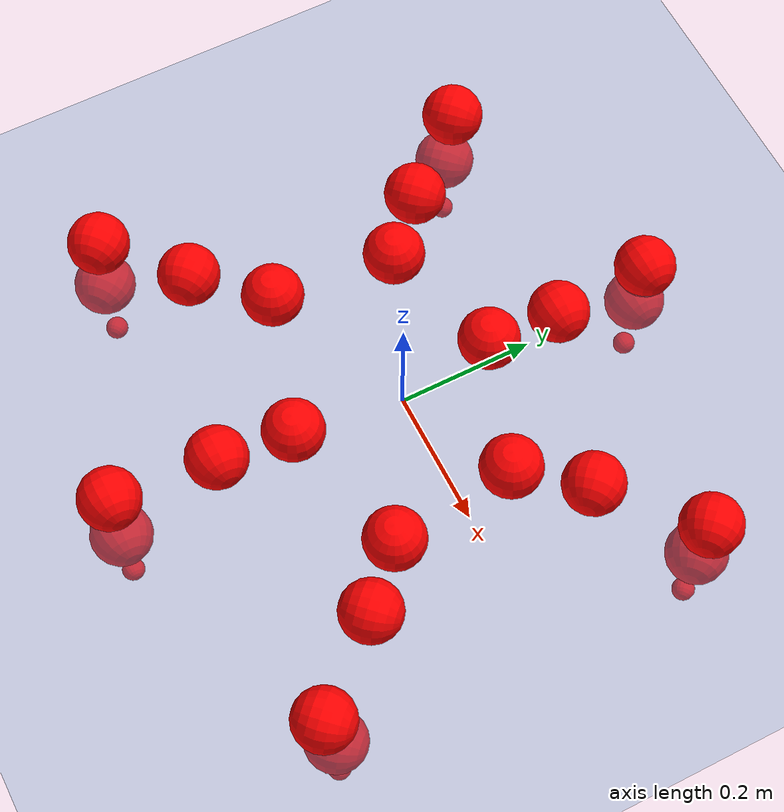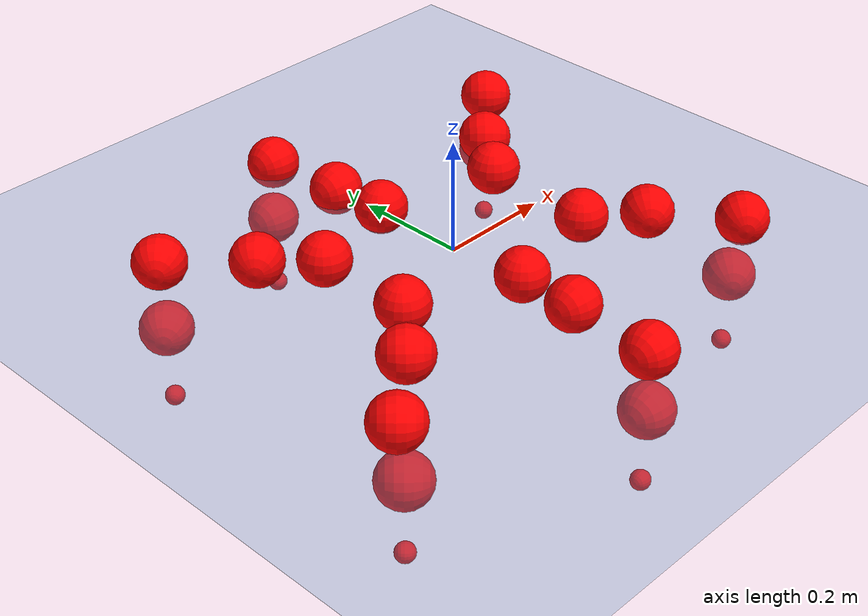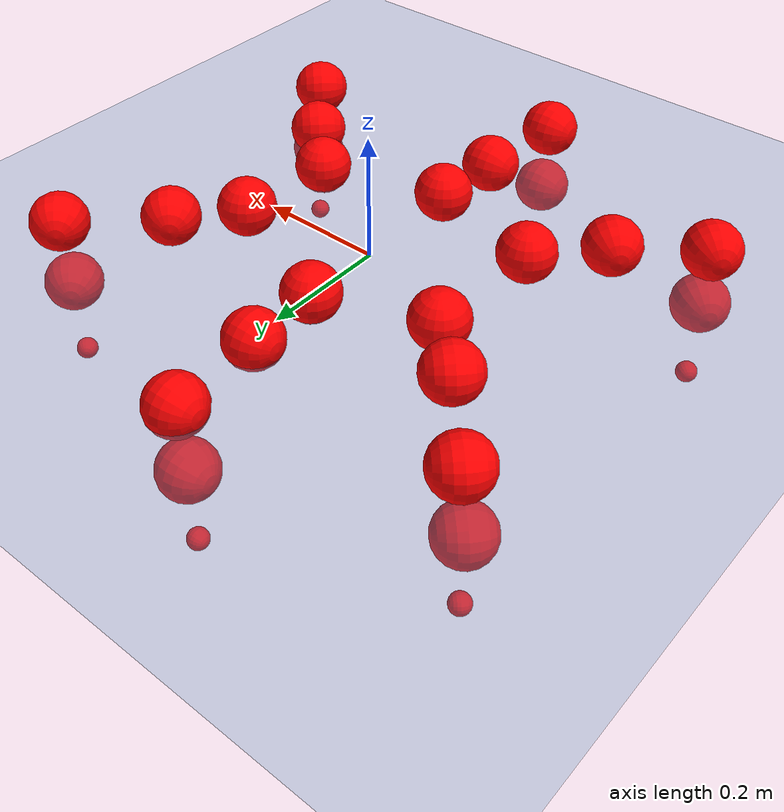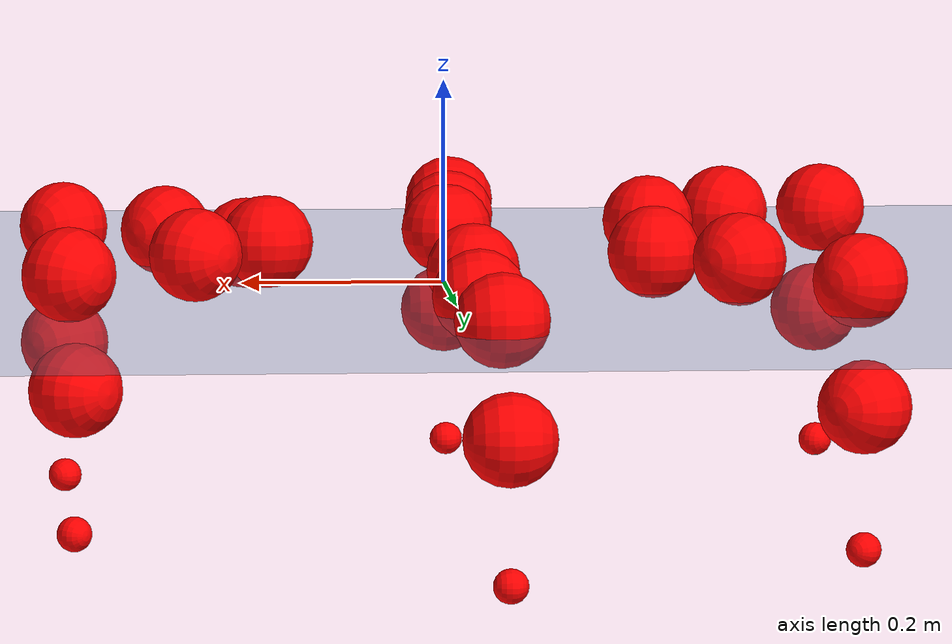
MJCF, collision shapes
<mujoco model="Golem">
  <compiler angle="radian" assetdir="assets" balanceinertia="true" inertiafromgeom="false"/>

  <option timestep="0.005" density="1.2" viscosity="2e-05"/>

  <size nkey="1"/>

  <visual>
    <quality shadowsize="8192"/>
    <map shadowclip="0.5"/>
  </visual>

  <default>
    <default class="/">
      <joint armature="0.01" damping="0.01" frictionloss="0.01"/>
      <geom contype="0" conaffinity="0" group="1" solref="-1000 -80"/>
      <site size="0.01 0.005 0.005" group="5"/>
      <general forcelimited="true" biastype="affine" gainprm="25" biasprm="0 -25 -0.5"/>
      <default class="visual">
        <geom type="mesh" group="2"/>
      </default>
      <default class="collision">
        <geom group="3"/>
      </default>
      <default class="foot">
        <geom size="0.01 0 0" condim="6" group="4" priority="1" solimp="0.015 1 0.01"/>
      </default>
      <default class="reward_collision_sphere">
        <geom group="5" rgba="1 0 0 1"/>
      </default>
    </default>
  </default>

  <asset>
    <texture type="skybox" colorspace="auto" name="//unnamed_texture_0" builtin="gradient" rgb1="0.95 0.95 0.95" rgb2="0.95 0.95 0.95" width="100" height="600"/>
    <texture type="2d" colorspace="auto" name="texplane" builtin="checker" rgb1="0.345 0.575 0.748" rgb2="0.345 0.575 0.748" markrgb="1 1 1" width="512" height="512"/>
    <material name="MatPlane" class="/" texture="texplane" texuniform="true" texrepeat="2 2" specular="0.9"/>
    <mesh name="body" class="/" file="body.stl" scale="0.001 0.001 0.001"/>
    <mesh name="coxa" class="/" file="coxa.stl" scale="0.001 0.001 0.001"/>
    <mesh name="femur" class="/" file="femur.stl" scale="0.001 0.001 0.001"/>
    <mesh name="tibia" class="/" file="tibia.stl" scale="0.001 0.001 0.001"/>
    <mesh name="tarsus" class="/" file="tarsus.stl" scale="0.001 0.001 0.001"/>
  </asset>

  <worldbody>
    <geom name="floor" class="/" size="100 100 0.125" type="plane" group="0" material="MatPlane"/>
    <light name="toplight_shadow" class="/" pos="0 0 5" dir="0.0990148 0.0990148 -0.990148" type="directional" ambient="0.04 0.04 0.04" diffuse="0.55 0.55 0.55" specular="0.12 0.12 0.12"/>
    <light name="toplight_fill" class="/" pos="0 0 5" dir="0.0990148 0.0990148 -0.990148" type="directional" castshadow="false" ambient="0.04 0.04 0.04" diffuse="0.3 0.3 0.3" specular="0.08 0.08 0.08"/>
    <body name="trunk" pos="-0.0112542 -0.00615939 -0.00549421" quat="1 -7.97174e-06 3.67301e-06 -2.81283e-05">
      <inertial pos="-0.00201564 -0.000824406 -0.0037045" quat="0.999972 0.000293242 -0.00681274 0.00296524" mass="5.62956" diaginertia="0.0420989 0.0657586 0.0014497"/>
      <joint name="//unnamed_joint_0" type="free"/>
      <geom name="//unnamed_geom_1" class="/" pos="0 0 0.0435126" quat="1 0 0 0" type="mesh" rgba="0.9 0.9 0.9 1" mesh="body"/>
      <site name="imu" class="/" pos="0.114918 -0.0495341 0.055973" size="0.0113439"/>
      <camera name="track" class="/" pos="0 -2.88138 0" quat="0.707107 0.707107 0 0" mode="trackcom"/>
      <camera name="ego_camera" class="/" pos="0.166739 0 0.0679884" quat="-0.5 -0.5 0.5 0.5"/>
      <body name="coxa_RR" pos="-0.227641 -0.120148 0.0547995" quat="0.382642 3.82604e-05 2.987e-06 -0.923897">
        <inertial pos="-0.00164534 0.0119601 0.00440033" quat="0.999282 -0.0340084 -0.00877307 -0.0142307" mass="0.331486" diaginertia="0.0374615 0.0671678 0.00158291"/>
        <joint name="coxa_joint_RR" class="/" pos="0 0 0" axis="0.0177209 -0.0129292 -0.999759" stiffness="0.0512152" range="-3.1564 3.15543" armature="0.0161569" damping="0.0218091" frictionloss="0.0114175"/>
        <geom name="//unnamed_geom_2" class="/" type="mesh" rgba="0.2 0.2 0.2 1" mesh="coxa"/>
        <geom name="//unnamed_geom_3" class="reward_collision_sphere" size="0.0453758" pos="-0.0384782 0 0"/>
        <body name="femur_RR" pos="0.0868409 0.00520863 0.000107921" quat="0.500422 -0.499673 0.500264 0.499641">
          <inertial pos="0.00481175 0.00357603 -0.00148917" quat="0.999918 0.000427957 -0.00954157 -0.00852428" mass="0.298636" diaginertia="0.0352047 0.0614352 0.00124388"/>
          <joint name="femur_joint_RR" class="/" pos="0 0 0" axis="0.000204216 0.0106222 -0.999944" stiffness="0.0525177" range="-2.94384 3.28714" armature="0.0124474" damping="0.00519596" frictionloss="0.00613408"/>
          <geom name="//unnamed_geom_4" class="/" type="mesh" rgba="0.9 0.9 0.9 1" mesh="femur"/>
          <geom name="//unnamed_geom_5" class="reward_collision_sphere" size="0.0453758"/>
          <body name="tibia_RR" pos="0.00781643 -0.144894 -0.012144" quat="-0.000285814 0.999983 -0.00347102 -0.0047378">
            <inertial pos="0.00983552 0.000847931 -0.00192039" quat="0.999971 -0.00259827 0.00279888 0.00666369" mass="0.281415" diaginertia="0.0371841 0.0686697 0.00169495"/>
            <joint name="tibia_joint_RR" class="/" pos="0 0 0" axis="-0.0281424 0.0391066 0.998839" range="-3.22705 3.01021" armature="0.0115937" damping="0.0246247" frictionloss="0.0113839"/>
            <geom name="//unnamed_geom_6" class="/" type="mesh" rgba="0.2 0.2 0.2 1" mesh="tibia"/>
            <geom name="//unnamed_geom_7" class="reward_collision_sphere" size="0.0453758"/>
            <body name="tarsus_RR" pos="0.104255 0.0011653 -0.00931335" quat="1 1.30088e-05 -1.99702e-05 5.02821e-07">
              <inertial pos="0.0673987 0.00102003 -0.00464199" quat="0.502778 0.502259 0.492162 0.502719" mass="0.293631" diaginertia="0.0345165 0.0596947 0.00146888"/>
              <joint name="tarsus_joint_RR" class="/" pos="0 0 0" axis="0.00448301 -0.00149945 0.999989" range="-2.94531 3.00296" armature="0.012531" damping="0.0343839" frictionloss="0.0140822"/>
              <geom name="//unnamed_geom_8" class="/" type="mesh" rgba="0.9 0.9 0.9 1" mesh="tarsus"/>
              <geom name="foot_1" class="foot" size="0.0114765" pos="0.143652 0 0" quat="0 -0.707107 0 0.707107"/>
              <geom name="//unnamed_geom_10" class="reward_collision_sphere" size="0.0453758"/>
              <geom name="//unnamed_geom_11" class="reward_collision_sphere" size="0.0170159" pos="0.13788 0 0"/>
              <site name="foot_1" class="foot" pos="0.143652 0 0" quat="0 -0.707107 0 0.707107" size="0.0113439"/>
            </body>
          </body>
        </body>
      </body>
      <body name="coxa_RM" pos="-0.00164683 -0.194951 0.0407475" quat="0.70787 -0.000892159 0.00301761 -0.706336">
        <inertial pos="-0.00781585 0.000770287 0.00459332" quat="0.999747 0.0196111 -0.00923643 0.00605031" mass="0.304848" diaginertia="0.0367191 0.0704768 0.00131197"/>
        <joint name="coxa_joint_RM" class="/" pos="0 0 0" axis="0.0027223 -0.00600798 -0.999978" range="-3.06985 3.12019" armature="0.0102468" damping="0.0472115" frictionloss="0.0187337"/>
        <geom name="//unnamed_geom_12" class="/" type="mesh" rgba="0.2 0.2 0.2 1" mesh="coxa"/>
        <geom name="//unnamed_geom_13" class="reward_collision_sphere" size="0.0453758" pos="-0.0384782 0 0"/>
        <body name="femur_RM" pos="0.0734694 -0.00924681 0.00291802" quat="0.496077 -0.503689 0.500597 0.499608">
          <inertial pos="-0.00152969 0.00391992 0.000418905" quat="0.999873 0.00387787 0.0124758 0.00911009" mass="0.24399" diaginertia="0.0293704 0.0586392 0.00125898"/>
          <joint name="femur_joint_RM" class="/" pos="0 0 0" axis="-0.0310116 9.131e-05 -0.999519" range="-3.12539 3.12078" armature="0.0140878" damping="0" frictionloss="0.0110593"/>
          <geom name="//unnamed_geom_14" class="/" type="mesh" rgba="0.9 0.9 0.9 1" mesh="femur"/>
          <geom name="//unnamed_geom_15" class="reward_collision_sphere" size="0.0453758"/>
          <body name="tibia_RM" pos="0.000394047 -0.1549 -0.0117608" quat="0.000121458 1 -0.000508317 -0.00029056">
            <inertial pos="-0.00716363 0.0116315 0.00187456" quat="0.998727 -0.0057646 -0.0136522 0.048225" mass="0.341517" diaginertia="0.0354412 0.0548907 0.00152139"/>
            <joint name="tibia_joint_RM" class="/" pos="0 0 0" axis="0.00652788 -0.00255528 0.999975" stiffness="0.00150012" range="-2.93717 2.87997" armature="0.0116859" damping="0.0183096" frictionloss="0.010507"/>
            <geom name="//unnamed_geom_16" class="/" type="mesh" rgba="0.2 0.2 0.2 1" mesh="tibia"/>
            <geom name="//unnamed_geom_17" class="reward_collision_sphere" size="0.0453758"/>
            <body name="tarsus_RM" pos="0.115203 0.00101602 -0.00686099" quat="1 0.000361881 0.000356844 0.000148152">
              <inertial pos="0.0759891 0.00704593 -0.00813206" quat="0.505735 0.538177 0.456887 0.495835" mass="0.24959" diaginertia="0.0389349 0.0667961 0.00160537"/>
              <joint name="tarsus_joint_RM" class="/" pos="0 0 0" axis="0.00192585 0.00171091 0.999997" stiffness="0.0363727" range="-3.27289 3.18154" armature="0.00904846" damping="0" frictionloss="0.0104551"/>
              <geom name="//unnamed_geom_18" class="/" type="mesh" rgba="0.9 0.9 0.9 1" mesh="tarsus"/>
              <geom name="foot_2" class="foot" size="0.0105144" pos="0.143652 0 0" quat="0 -0.707107 0 0.707107"/>
              <geom name="//unnamed_geom_20" class="reward_collision_sphere" size="0.0453758"/>
              <geom name="//unnamed_geom_21" class="reward_collision_sphere" size="0.0170159" pos="0.13788 0 0"/>
              <site name="foot_2" class="foot" pos="0.143652 0 0" quat="0 -0.707107 0 0.707107" size="0.0113439"/>
            </body>
          </body>
        </body>
      </body>
      <body name="coxa_RF" pos="0.230092 -0.131171 0.0337793" quat="0.924022 0.000288216 -0.000839959 -0.382338">
        <inertial pos="0.00266808 -0.00563402 0.00143946" quat="0.999999 0.000792111 -0.000642455 -0.000213622" mass="0.292309" diaginertia="0.0345653 0.059212 0.00151894"/>
        <joint name="coxa_joint_RF" class="/" pos="0 0 0" axis="-0.000412334 0.000980298 -0.999999" stiffness="0.00676365" range="-3.1081 3.1036" armature="0.00604104" damping="0.0127232" frictionloss="0.0119204"/>
        <geom name="//unnamed_geom_22" class="/" type="mesh" rgba="0.2 0.2 0.2 1" mesh="coxa"/>
        <geom name="//unnamed_geom_23" class="reward_collision_sphere" size="0.0453758" pos="-0.0384782 0 0"/>
        <body name="femur_RF" pos="0.0711022 0.00259671 0.00484931" quat="0.501266 -0.500076 0.498997 0.499659">
          <inertial pos="-0.00392258 0.00677088 0.00156031" quat="0.999784 -0.00455073 -0.00858561 -0.0183702" mass="0.310114" diaginertia="0.034592 0.0709879 0.00133479"/>
          <joint name="femur_joint_RF" class="/" pos="0 0 0" axis="-0.00363809 -0.0013435 -0.999992" range="-2.9078 3.08582" armature="0.0172134" damping="0.0015987" frictionloss="0.00655629"/>
          <geom name="//unnamed_geom_24" class="/" type="mesh" rgba="0.9 0.9 0.9 1" mesh="femur"/>
          <geom name="//unnamed_geom_25" class="reward_collision_sphere" size="0.0453758"/>
          <body name="tibia_RF" pos="0.00841268 -0.156699 -0.0122151" quat="-0.000559119 1 -0.000572601 -0.000365472">
            <inertial pos="0.0120358 -0.000870876 0.00107273" quat="0.999998 -0.000772935 0.00112775 -0.00118604" mass="0.249356" diaginertia="0.036813 0.0560947 0.00145001"/>
            <joint name="tibia_joint_RF" class="/" pos="0 0 0" axis="0.0292809 0.0501493 0.998312" range="-3.1024 3.37318" armature="0.0130902" damping="0.00620875" frictionloss="0.0116252"/>
            <geom name="//unnamed_geom_26" class="/" type="mesh" rgba="0.2 0.2 0.2 1" mesh="tibia"/>
            <geom name="//unnamed_geom_27" class="reward_collision_sphere" size="0.0453758"/>
            <body name="tarsus_RF" pos="0.118645 -0.0105979 -0.00945085" quat="0.999985 0.00343884 0.00184393 -0.00385674">
              <inertial pos="0.0762033 -0.000987014 0.00106425" quat="0.499947 0.496803 0.497561 0.505641" mass="0.291539" diaginertia="0.0346211 0.0632922 0.00135259"/>
              <joint name="tarsus_joint_RF" class="/" pos="0 0 0" axis="-0.0294242 0.0130641 0.999482" stiffness="0.019002" range="-3.06547 3.17388" armature="0.0080193" damping="0.00241389" frictionloss="0.0142552"/>
              <geom name="//unnamed_geom_28" class="/" type="mesh" rgba="0.9 0.9 0.9 1" mesh="tarsus"/>
              <geom name="foot_3" class="foot" size="0.00792056" pos="0.143652 0 0" quat="0 -0.707107 0 0.707107"/>
              <geom name="//unnamed_geom_30" class="reward_collision_sphere" size="0.0453758"/>
              <geom name="//unnamed_geom_31" class="reward_collision_sphere" size="0.0170159" pos="0.13788 0 0"/>
              <site name="foot_3" class="foot" pos="0.143652 0 0" quat="0 -0.707107 0 0.707107" size="0.0113439"/>
            </body>
          </body>
        </body>
      </body>
      <body name="coxa_LR" pos="-0.2165 0.122197 0.0439905" quat="0.382649 -6.98904e-05 -0.000157528 0.923894">
        <inertial pos="0.0107351 -0.00512969 0.012615" quat="0.998279 0.0145177 -0.0291691 0.0487542" mass="0.287475" diaginertia="0.0319336 0.0470391 0.00126648"/>
        <joint name="coxa_joint_LR" class="/" pos="0 0 0" axis="-0.0492247 -0.0245253 -0.998487" range="-3.09543 3.24739" armature="0.0147637" damping="0.0133121" frictionloss="0.016313"/>
        <geom name="//unnamed_geom_32" class="/" type="mesh" rgba="0.2 0.2 0.2 1" mesh="coxa"/>
        <geom name="//unnamed_geom_33" class="reward_collision_sphere" size="0.0453758" pos="-0.0384782 0 0"/>
        <body name="femur_LR" pos="0.0678167 0.00220406 0.000525035" quat="0.500219 -0.50007 0.499841 0.49987">
          <inertial pos="0.0035379 0.00069613 -0.000524416" quat="0.999595 0.0164814 0.00328797 -0.0229521" mass="0.291752" diaginertia="0.0360927 0.0562715 0.00146508"/>
          <joint name="femur_joint_LR" class="/" pos="0 0 0" axis="0.0270331 0.0155478 0.999514" range="-3.1881 3.11858" armature="0.0108202" damping="0.00829553" frictionloss="0.0182707"/>
          <geom name="//unnamed_geom_34" class="/" type="mesh" rgba="0.9 0.9 0.9 1" mesh="femur"/>
          <geom name="//unnamed_geom_35" class="reward_collision_sphere" size="0.0453758"/>
          <body name="tibia_LR" pos="0.0079967 -0.155745 -0.00976963" quat="-0.00309096 0.999986 0.00286806 0.00313125">
            <inertial pos="0.000993038 0.00124142 -0.000612613" quat="0.999998 0.00144409 0.000561969 -0.0015608" mass="0.263833" diaginertia="0.0330232 0.0598238 0.00135675"/>
            <joint name="tibia_joint_LR" class="/" pos="0 0 0" axis="-0.00483492 0.0285029 -0.999582" range="-3.03406 3.31289" armature="0.0109175" damping="0.0113803" frictionloss="0.0118597"/>
            <geom name="//unnamed_geom_36" class="/" type="mesh" rgba="0.2 0.2 0.2 1" mesh="tibia"/>
            <geom name="//unnamed_geom_37" class="reward_collision_sphere" size="0.0453758"/>
            <body name="tarsus_LR" pos="0.122662 2.06016e-06 -0.00851602" quat="0.999985 -0.00444879 -0.00262991 0.00190457">
              <inertial pos="0.064836 0.00067579 0.0119415" quat="0.497703 0.506203 0.4982 0.497842" mass="0.30561" diaginertia="0.0340969 0.0657783 0.00138649"/>
              <joint name="tarsus_joint_LR" class="/" pos="0 0 0" axis="-0.0504671 0.00090763 -0.998725" range="-2.95329 3.32529" armature="0.0116507" damping="0.0243988" frictionloss="0.00954509"/>
              <geom name="//unnamed_geom_38" class="/" type="mesh" rgba="0.9 0.9 0.9 1" mesh="tarsus"/>
              <geom name="foot_4" class="foot" size="0.0087731" pos="0.143652 0 0" quat="0.707107 0 -0.707107 0"/>
              <geom name="//unnamed_geom_40" class="reward_collision_sphere" size="0.0453758"/>
              <geom name="//unnamed_geom_41" class="reward_collision_sphere" size="0.0170159" pos="0.13788 0 0"/>
              <site name="foot_4" class="foot" pos="0.143652 0 0" quat="0.707107 0 -0.707107 0" size="0.0113439"/>
            </body>
          </body>
        </body>
      </body>
      <body name="coxa_LM" pos="-0.00854488 0.192462 0.0342197" quat="0.706174 -0.000283477 0.00189444 0.708036">
        <inertial pos="-0.00186606 0.00314548 0.00431642" quat="0.999422 -0.0334337 0.0060726 0.000832842" mass="0.303326" diaginertia="0.0386378 0.064685 0.00150405"/>
        <joint name="coxa_joint_LM" class="/" pos="0 0 0" axis="0.000897081 -0.000218155 -1" stiffness="0.0328257" range="-3.32393 3.16375" armature="0.00876755" damping="0" frictionloss="0.00641816"/>
        <geom name="//unnamed_geom_42" class="/" type="mesh" rgba="0.2 0.2 0.2 1" mesh="coxa"/>
        <geom name="//unnamed_geom_43" class="reward_collision_sphere" size="0.0453758" pos="-0.0384782 0 0"/>
        <body name="femur_LM" pos="0.0747874 -0.00184225 -0.0116825" quat="0.498518 -0.502864 0.498037 0.500567">
          <inertial pos="-0.00481797 0.00931342 -0.0124187" quat="0.998439 0.000910641 0.0462107 0.0313488" mass="0.284136" diaginertia="0.031562 0.0702243 0.00135315"/>
          <joint name="femur_joint_LM" class="/" pos="0 0 0" axis="-0.0332042 -0.00388124 0.999441" range="-3.1281 3.31566" armature="0.00825613" damping="0.0101117" frictionloss="0.0120641"/>
          <geom name="//unnamed_geom_44" class="/" type="mesh" rgba="0.9 0.9 0.9 1" mesh="femur"/>
          <geom name="//unnamed_geom_45" class="reward_collision_sphere" size="0.0453758"/>
          <body name="tibia_LM" pos="0.00527092 -0.150894 0.00969449" quat="0.00279524 0.999981 -6.91671e-05 0.00555893">
            <inertial pos="-0.00148727 0.0130208 -0.00274198" quat="0.999394 0.0247519 0.00347727 -0.0242386" mass="0.303444" diaginertia="0.0333403 0.0540402 0.00139598"/>
            <joint name="tibia_joint_LM" class="/" pos="0 0 0" axis="-0.0123889 0.0142158 -0.999822" stiffness="0.0138041" range="-3.11242 3.08599" armature="0.00600786" damping="0.0638775" frictionloss="0.0144386"/>
            <geom name="//unnamed_geom_46" class="/" type="mesh" rgba="0.2 0.2 0.2 1" mesh="tibia"/>
            <geom name="//unnamed_geom_47" class="reward_collision_sphere" size="0.0453758"/>
            <body name="tarsus_LM" pos="0.112416 0.00142848 -0.00658283" quat="0.999979 -0.00527026 -0.00373939 0.000611108">
              <inertial pos="0.0843792 -0.00142489 0.00544702" quat="0.499908 0.500326 0.499694 0.500071" mass="0.306506" diaginertia="0.041927 0.0727596 0.00150916"/>
              <joint name="tarsus_joint_LM" class="/" pos="0 0 0" axis="-0.00205632 0.000250551 -0.999998" stiffness="0.0196689" range="-3.38607 3.10387" armature="0.00555435" damping="0.0710465" frictionloss="0.00917731"/>
              <geom name="//unnamed_geom_48" class="/" type="mesh" rgba="0.9 0.9 0.9 1" mesh="tarsus"/>
              <geom name="foot_5" class="foot" size="0.00988363" pos="0.143652 0 0" quat="0.707107 0 -0.707107 0"/>
              <geom name="//unnamed_geom_50" class="reward_collision_sphere" size="0.0453758"/>
              <geom name="//unnamed_geom_51" class="reward_collision_sphere" size="0.0170159" pos="0.13788 0 0"/>
              <site name="foot_5" class="foot" pos="0.143652 0 0" quat="0.707107 0 -0.707107 0" size="0.0113439"/>
            </body>
          </body>
        </body>
      </body>
      <body name="coxa_LF" pos="0.215774 0.108412 0.0551027" quat="0.923848 -0.000444946 0.000276701 0.38276">
        <inertial pos="-0.00043808 0.000577076 0.00374046" quat="0.999321 -0.00863792 -0.00473478 0.0355161" mass="0.358957" diaginertia="0.0402861 0.0724332 0.00166477"/>
        <joint name="coxa_joint_LF" class="/" pos="0 0 0" axis="-0.000725652 0.00111294 -0.999999" stiffness="0.0170825" range="-3.05195 2.8942" armature="0.00609712" damping="0.0727276" frictionloss="0.0153873"/>
        <geom name="//unnamed_geom_52" class="/" type="mesh" rgba="0.2 0.2 0.2 1" mesh="coxa"/>
        <geom name="//unnamed_geom_53" class="reward_collision_sphere" size="0.0453758" pos="-0.0384782 0 0"/>
        <body name="femur_LF" pos="0.0747233 0.0111724 -0.00276564" quat="0.499646 -0.499824 0.504013 0.496488">
          <inertial pos="-0.0120284 0.000286981 0.000917787" quat="0.99995 0.00136648 -0.00887801 -0.00432757" mass="0.303045" diaginertia="0.0358874 0.0625406 0.00161967"/>
          <joint name="femur_joint_LF" class="/" pos="0 0 0" axis="0.00189125 -0.00312275 0.999993" range="-3.27086 3.12096" armature="0.00607655" damping="0" frictionloss="0.0123561"/>
          <geom name="//unnamed_geom_54" class="/" type="mesh" rgba="0.9 0.9 0.9 1" mesh="femur"/>
          <geom name="//unnamed_geom_55" class="reward_collision_sphere" size="0.0453758"/>
          <body name="tibia_LF" pos="0.00502379 -0.166008 -0.00640277" quat="-0.00019857 1 0.000229678 -0.000106392">
            <inertial pos="0.00138988 -0.00799847 -0.0042795" quat="0.999938 0.003481 -0.00476086 -0.00947421" mass="0.307945" diaginertia="0.0356029 0.0624983 0.00146225"/>
            <joint name="tibia_joint_LF" class="/" pos="0 0 0" axis="-0.00404027 -0.0017905 -0.99999" stiffness="0.0314249" range="-3.13384 3.15471" armature="0.0153532" damping="0.0430945" frictionloss="0.00843177"/>
            <geom name="//unnamed_geom_56" class="/" type="mesh" rgba="0.2 0.2 0.2 1" mesh="tibia"/>
            <geom name="//unnamed_geom_57" class="reward_collision_sphere" size="0.0453758"/>
            <body name="tarsus_LF" pos="0.110592 -0.00443741 -0.00421514" quat="0.999984 -0.00181865 -0.00229483 0.00481077">
              <inertial pos="0.0760955 0.00186672 0.00488971" quat="0.506365 0.470383 0.524141 0.497605" mass="0.264371" diaginertia="0.0341354 0.0537683 0.00132346"/>
              <joint name="tarsus_joint_LF" class="/" pos="0 0 0" axis="-0.0246725 0.00210676 -0.999693" range="-2.97173 3.04177" armature="0.0119957" damping="0.0692442" frictionloss="0.0108219"/>
              <geom name="//unnamed_geom_58" class="/" type="mesh" rgba="0.9 0.9 0.9 1" mesh="tarsus"/>
              <geom name="foot_6" class="foot" size="0.0103026" pos="0.143652 0 0" quat="0.707107 0 -0.707107 0"/>
              <geom name="//unnamed_geom_60" class="reward_collision_sphere" size="0.0453758"/>
              <geom name="//unnamed_geom_61" class="reward_collision_sphere" size="0.0170159" pos="0.13788 0 0"/>
              <site name="foot_6" class="foot" pos="0.143652 0 0" quat="0.707107 0 -0.707107 0" size="0.0113439"/>
            </body>
          </body>
        </body>
      </body>
    </body>
  </worldbody>

  <contact>
    <pair class="/" geom1="floor" geom2="foot_1" name="//unnamed_contact_0"/>
    <pair class="/" geom1="floor" geom2="foot_2" name="//unnamed_contact_1"/>
    <pair class="/" geom1="floor" geom2="foot_3" name="//unnamed_contact_2"/>
    <pair class="/" geom1="floor" geom2="foot_4" name="//unnamed_contact_3"/>
    <pair class="/" geom1="floor" geom2="foot_5" name="//unnamed_contact_4"/>
    <pair class="/" geom1="floor" geom2="foot_6" name="//unnamed_contact_5"/>
  </contact>

  <actuator>
    <general name="coxa_joint_RR" class="/" joint="coxa_joint_RR" forcerange="-8.4388 8.4388" gainprm="26.2551" biasprm="0 -26.2551 -0.556105"/>
    <general name="femur_joint_RR" class="/" joint="femur_joint_RR" forcerange="-8.17364 8.17364" gainprm="26.2551" biasprm="0 -26.2551 -0.556105"/>
    <general name="tibia_joint_RR" class="/" joint="tibia_joint_RR" forcerange="-8.74013 8.74013" gainprm="26.2551" biasprm="0 -26.2551 -0.556105"/>
    <general name="tarsus_joint_RR" class="/" joint="tarsus_joint_RR" forcerange="-5.72825 5.72825" gainprm="26.2551" biasprm="0 -26.2551 -0.556105"/>
    <general name="coxa_joint_RM" class="/" joint="coxa_joint_RM" forcerange="-11.9219 11.9219" gainprm="26.2551" biasprm="0 -26.2551 -0.556105"/>
    <general name="femur_joint_RM" class="/" joint="femur_joint_RM" forcerange="-8.60147 8.60147" gainprm="26.2551" biasprm="0 -26.2551 -0.556105"/>
    <general name="tibia_joint_RM" class="/" joint="tibia_joint_RM" forcerange="-10.2899 10.2899" gainprm="26.2551" biasprm="0 -26.2551 -0.556105"/>
    <general name="tarsus_joint_RM" class="/" joint="tarsus_joint_RM" forcerange="-8.47426 8.47426" gainprm="26.2551" biasprm="0 -26.2551 -0.556105"/>
    <general name="coxa_joint_RF" class="/" joint="coxa_joint_RF" forcerange="-11.6636 11.6636" gainprm="26.2551" biasprm="0 -26.2551 -0.556105"/>
    <general name="femur_joint_RF" class="/" joint="femur_joint_RF" forcerange="-10.039 10.039" gainprm="26.2551" biasprm="0 -26.2551 -0.556105"/>
    <general name="tibia_joint_RF" class="/" joint="tibia_joint_RF" forcerange="-12.0904 12.0904" gainprm="26.2551" biasprm="0 -26.2551 -0.556105"/>
    <general name="tarsus_joint_RF" class="/" joint="tarsus_joint_RF" forcerange="-6.64306 6.64306" gainprm="26.2551" biasprm="0 -26.2551 -0.556105"/>
    <general name="coxa_joint_LR" class="/" joint="coxa_joint_LR" forcerange="-8.13199 8.13199" gainprm="26.2551" biasprm="0 -26.2551 -0.556105"/>
    <general name="femur_joint_LR" class="/" joint="femur_joint_LR" forcerange="-8.69602 8.69602" gainprm="26.2551" biasprm="0 -26.2551 -0.556105"/>
    <general name="tibia_joint_LR" class="/" joint="tibia_joint_LR" forcerange="-7.8619 7.8619" gainprm="26.2551" biasprm="0 -26.2551 -0.556105"/>
    <general name="tarsus_joint_LR" class="/" joint="tarsus_joint_LR" forcerange="-7.27845 7.27845" gainprm="26.2551" biasprm="0 -26.2551 -0.556105"/>
    <general name="coxa_joint_LM" class="/" joint="coxa_joint_LM" forcerange="-5.45726 5.45726" gainprm="26.2551" biasprm="0 -26.2551 -0.556105"/>
    <general name="femur_joint_LM" class="/" joint="femur_joint_LM" forcerange="-8.12421 8.12421" gainprm="26.2551" biasprm="0 -26.2551 -0.556105"/>
    <general name="tibia_joint_LM" class="/" joint="tibia_joint_LM" forcerange="-8.0647 8.0647" gainprm="26.2551" biasprm="0 -26.2551 -0.556105"/>
    <general name="tarsus_joint_LM" class="/" joint="tarsus_joint_LM" forcerange="-8.68699 8.68699" gainprm="26.2551" biasprm="0 -26.2551 -0.556105"/>
    <general name="coxa_joint_LF" class="/" joint="coxa_joint_LF" forcerange="-12.1886 12.1886" gainprm="26.2551" biasprm="0 -26.2551 -0.556105"/>
    <general name="femur_joint_LF" class="/" joint="femur_joint_LF" forcerange="-8.77749 8.77749" gainprm="26.2551" biasprm="0 -26.2551 -0.556105"/>
    <general name="tibia_joint_LF" class="/" joint="tibia_joint_LF" forcerange="-7.86044 7.86044" gainprm="26.2551" biasprm="0 -26.2551 -0.556105"/>
    <general name="tarsus_joint_LF" class="/" joint="tarsus_joint_LF" forcerange="-10.057 10.057" gainprm="26.2551" biasprm="0 -26.2551 -0.556105"/>
  </actuator>

  <sensor>
    <gyro site="imu" name="imu_angular_velocity"/>
    <velocimeter site="imu" name="imu_linear_velocity"/>
    <framelinvel objtype="site" objname="foot_1" name="foot_1_global_linear_velocity"/>
    <framelinvel objtype="site" objname="foot_2" name="foot_2_global_linear_velocity"/>
    <framelinvel objtype="site" objname="foot_3" name="foot_3_global_linear_velocity"/>
    <framelinvel objtype="site" objname="foot_4" name="foot_4_global_linear_velocity"/>
    <framelinvel objtype="site" objname="foot_5" name="foot_5_global_linear_velocity"/>
    <framelinvel objtype="site" objname="foot_6" name="foot_6_global_linear_velocity"/>
  </sensor>

  <keyframe>
    <key name="home" qpos="0 0 0.1457 1 0 0 0 0 0 0 0 0 0 0 0 0 0 0 0 0 0 0 0 0 0 0 0 0 0 0 0"/>
  </keyframe>
</mujoco>
